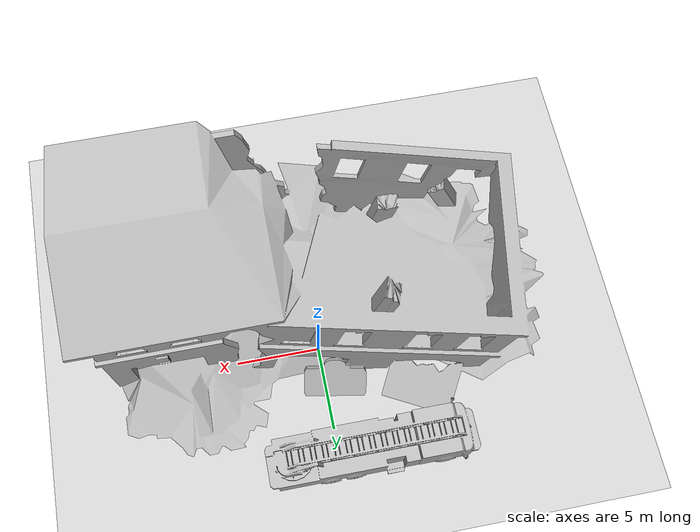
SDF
<sdf version="1.7">
 <world name="default">
  <light name="sun" type="directional">
   <pose>0 0 10 0 -0 0</pose>
   <diffuse>0.8 0.8 0.8 1</diffuse>
   <specular>0.2 0.2 0.2 1</specular>
   <attenuation>
    <range>1000</range>
    <constant>0.9</constant>
    <linear>0.01</linear>
    <quadratic>0.001</quadratic>
   </attenuation>
   <direction>-0.5 0.1 -0.9</direction>
   <spot><inner_angle>0</inner_angle><outer_angle>0</outer_angle><falloff>0</falloff></spot>
  </light>
  <model name="ground_plane">
   <static>1</static>
   <link name="link">
    <collision name="collision">
     <geometry><plane><normal>0 0 1</normal><size>100 100</size></plane></geometry>
     <surface><friction><ode><mu>100</mu><mu2>50</mu2></ode></friction></surface>
    </collision>
    <visual name="visual">
     <cast_shadows>0</cast_shadows>
     <geometry><plane><normal>0 0 1</normal><size>100 100</size></plane></geometry>
     <material>
      <script><uri>file://media/materials/scripts/gazebo.material</uri><name>Gazebo/Grey</name></script>
     </material>
    </visual>
   </link>
  </model>
  <gravity>0 0 -9.8</gravity>
  <magnetic_field>6e-06 2.3e-05 -4.2e-05</magnetic_field>
  <atmosphere type="adiabatic"/>
  <physics type="ode">
   <max_step_size>0.001</max_step_size>
   <real_time_factor>1</real_time_factor>
   <real_time_update_rate>1000</real_time_update_rate>
  </physics>
  <scene><ambient>0.4 0.4 0.4 1</ambient><background>0.7 0.7 0.7 1</background><shadows>1</shadows></scene>
  <audio><device>default</device></audio>
  <spherical_coordinates>
   <surface_model>EARTH_WGS84</surface_model>
   <latitude_deg>0</latitude_deg>
   <longitude_deg>0</longitude_deg>
   <elevation>0</elevation>
   <heading_deg>0</heading_deg>
  </spherical_coordinates>
  <model name="collapsed_fire_station">
   <static>1</static>
   <link name="link">
    <collision name="collision">
     <geometry><mesh><uri>model://collapsed_fire_station/meshes/collapsed_fire_station.dae</uri></mesh></geometry>
    </collision>
    <visual name="visual">
     <geometry><mesh><uri>model://collapsed_fire_station/meshes/collapsed_fire_station.dae</uri></mesh></geometry>
    </visual>
   </link>
   <pose>-0.974241 -3.6466 0 0 0 -3.14095</pose>
  </model>
  <model name="fire_truck">
   <static>1</static>
   <link name="link">
    <collision name="collision">
     <geometry>
      <mesh><scale>0.1 0.1 0.1</scale><uri>model://fire_truck/meshes/fire_truck.obj</uri></mesh>
     </geometry>
    </collision>
    <visual name="visual">
     <geometry>
      <mesh><scale>0.1 0.1 0.1</scale><uri>model://fire_truck/meshes/fire_truck.obj</uri></mesh>
     </geometry>
    </visual>
   </link>
   <pose>-2.28937 6.63306 0 0 -0 1.56924</pose>
  </model>
 </world>
</sdf>
